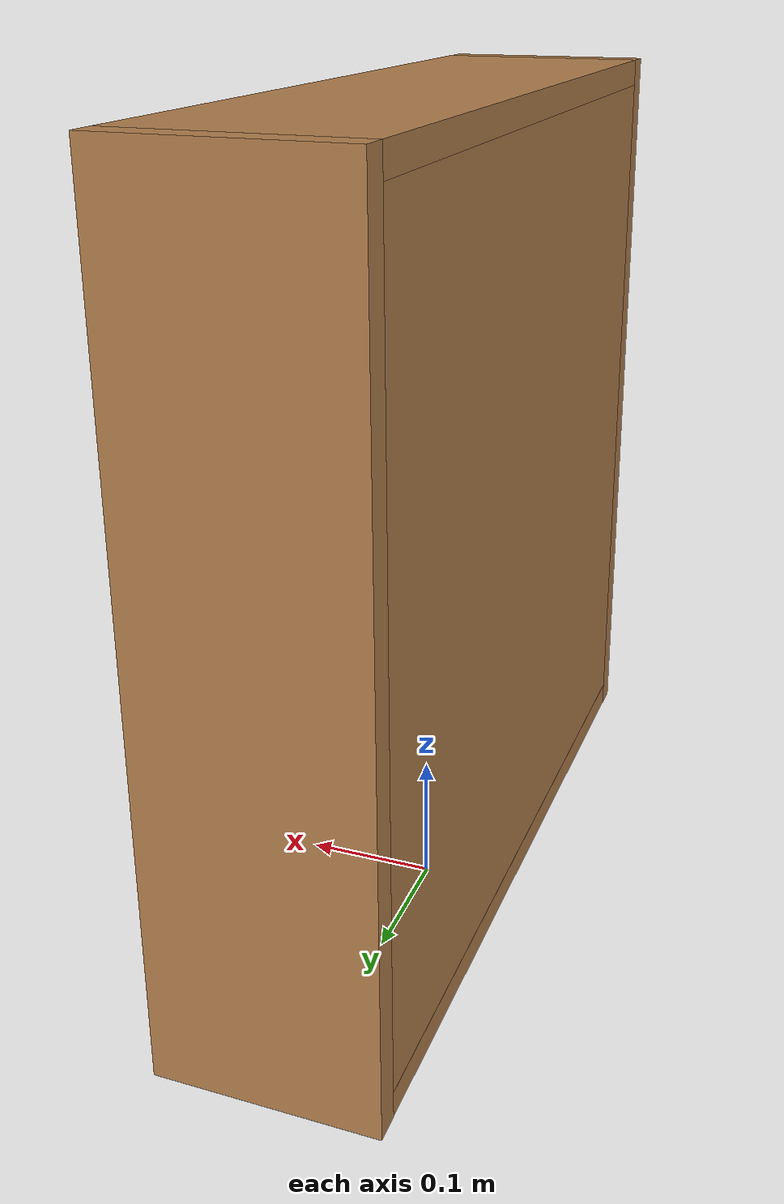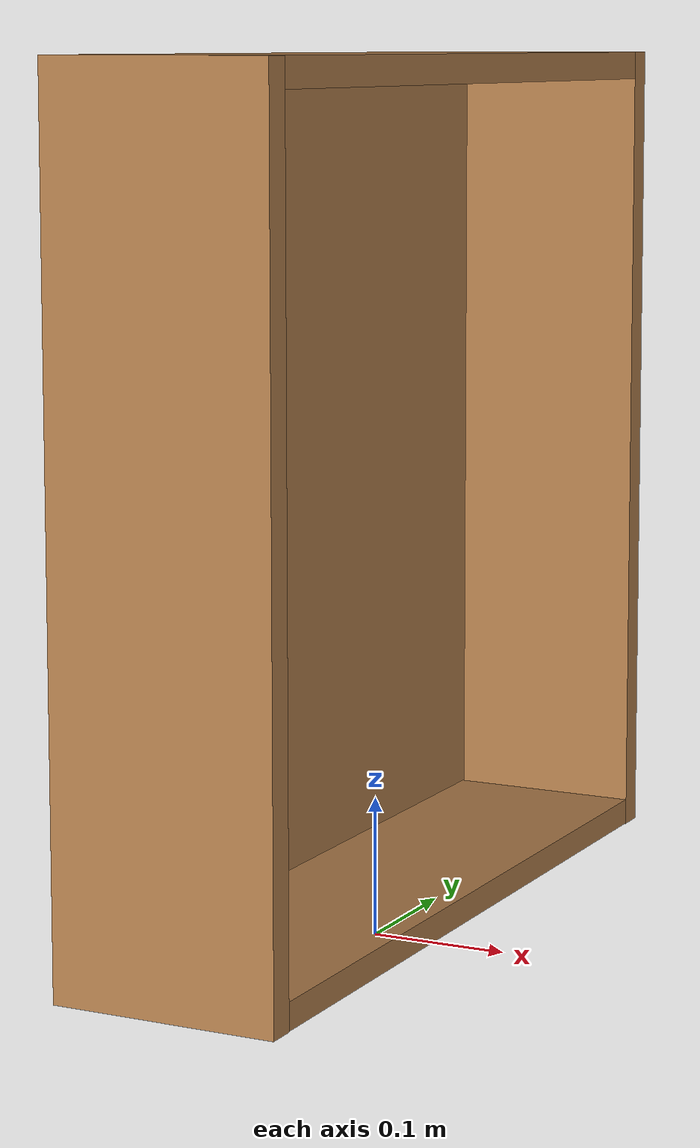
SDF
<?xml version='1.0'?>
<sdf version='1.6'>
  <model name='wooden_case_modi'>
    <link name='base'>
      <pose frame=''>-0 0 0.024 0 -0 0</pose>
      <inertial>
        <pose frame=''>-0.022184 0 0.171592 0 -0 0</pose>
        <mass>3.96264</mass>
        <inertia>
          <ixx>0.213536</ixx>
          <ixy>0</ixy>
          <ixz>0.00077938</ixz>
          <iyy>0.0708943</iyy>
          <iyz>0</iyz>
          <izz>0.154604</izz>
        </inertia>
      </inertial>
      <self_collide>0</self_collide>
      <kinematic>0</kinematic>
      <gravity>1</gravity>
      <visual name='visual_back'>
        <pose frame=''>-0.07 0 0.3 0 -0 0</pose>
        <geometry>
          <box>
            <size>0.02 0.56 0.56</size>
          </box>
        </geometry>
        <material>
          <script>
            <uri>file://media/materials/scripts/gazebo.material</uri>
            <name>Gazebo/Wood</name>
          </script>
          <shader type='pixel'>
            <normal_map>__default__</normal_map>
          </shader>
          <ambient>1 1 1 1</ambient>
          <diffuse>1 1 1 1</diffuse>
          <specular>0.2 0.2 0.2 1</specular>
          <emissive>0 0 0 1</emissive>
        </material>
        <transparency>0</transparency>
        <cast_shadows>1</cast_shadows>
      </visual>
      <visual name='visual_bottom'>
        <pose frame=''>0 0 0.01 0 -0 0</pose>
        <geometry>
          <box>
            <size>0.16 0.56 0.01905</size>
          </box>
        </geometry>
        <material>
          <script>
            <uri>file://media/materials/scripts/gazebo.material</uri>
            <name>Gazebo/Wood</name>
          </script>
          <shader type='pixel'>
            <normal_map>__default__</normal_map>
          </shader>
          <ambient>1 1 1 1</ambient>
          <diffuse>1 1 1 1</diffuse>
          <specular>0.2 0.2 0.2 1</specular>
          <emissive>0 0 0 1</emissive>
        </material>
        <transparency>0</transparency>
        <cast_shadows>1</cast_shadows>
      </visual>
      <visual name='visual_top'>
        <pose frame=''>0 0 0.59 0 -0 0</pose>
        <geometry>
          <box>
            <size>0.16 0.56 0.02</size>
          </box>
        </geometry>
        <material>
          <script>
            <uri>file://media/materials/scripts/gazebo.material</uri>
            <name>Gazebo/Wood</name>
          </script>
          <shader type='pixel'>
            <normal_map>__default__</normal_map>
          </shader>
          <ambient>1 1 1 1</ambient>
          <diffuse>1 1 1 1</diffuse>
          <specular>0.2 0.2 0.2 1</specular>
          <emissive>0 0 0 1</emissive>
        </material>
        <transparency>0</transparency>
        <cast_shadows>1</cast_shadows>
      </visual>
      <visual name='visual_left'>
        <pose frame=''>0 -0.29 0.3 0 -0 0</pose>
        <geometry>
          <box>
            <size>0.16 0.02 0.6</size>
          </box>
        </geometry>
        <material>
          <script>
            <uri>file://media/materials/scripts/gazebo.material</uri>
            <name>Gazebo/Wood</name>
          </script>
          <shader type='pixel'>
            <normal_map>__default__</normal_map>
          </shader>
          <ambient>1 1 1 1</ambient>
          <diffuse>1 1 1 1</diffuse>
          <specular>0.2 0.2 0.2 1</specular>
          <emissive>0 0 0 1</emissive>
        </material>
        <transparency>0</transparency>
        <cast_shadows>1</cast_shadows>
      </visual>
      <visual name='visual_right'>
        <pose frame=''>0 0.29 0.3 0 -0 0</pose>
        <geometry>
          <box>
            <size>0.16 0.02 0.6</size>
          </box>
        </geometry>
        <material>
          <script>
            <uri>file://media/materials/scripts/gazebo.material</uri>
            <name>Gazebo/Wood</name>
          </script>
          <shader type='pixel'>
            <normal_map>__default__</normal_map>
          </shader>
          <ambient>1 1 1 1</ambient>
          <diffuse>1 1 1 1</diffuse>
          <specular>0.2 0.2 0.2 1</specular>
          <emissive>0 0 0 1</emissive>
        </material>
        <transparency>0</transparency>
        <cast_shadows>1</cast_shadows>
      </visual>
      <collision name='collision_back'>
        <laser_retro>0</laser_retro>
        <max_contacts>10</max_contacts>
        <pose frame=''>-0.07 0 0.3 0 -0 0</pose>
        <geometry>
          <box>
            <size>0.02 0.56 0.56</size>
          </box>
        </geometry>
        <surface>
          <friction>
            <ode>
              <mu>1</mu>
              <mu2>1</mu2>
              <fdir1>0 0 0</fdir1>
              <slip1>0</slip1>
              <slip2>0</slip2>
            </ode>
            <torsional>
              <coefficient>1</coefficient>
              <patch_radius>0</patch_radius>
              <surface_radius>0.01</surface_radius>
              <use_patch_radius>0</use_patch_radius>
              <ode>
                <slip>0</slip>
              </ode>
            </torsional>
          </friction>
          <bounce>
            <restitution_coefficient>0</restitution_coefficient>
            <threshold>1e+06</threshold>
          </bounce>
          <contact>
            <collide_without_contact>0</collide_without_contact>
            <collide_without_contact_bitmask>1</collide_without_contact_bitmask>
            <collide_bitmask>1</collide_bitmask>
            <ode>
              <soft_cfm>0</soft_cfm>
              <soft_erp>0.2</soft_erp>
              <kp>100000</kp>
              <kd>100</kd>
              <max_vel>100</max_vel>
              <min_depth>0.001</min_depth>
            </ode>
            <bullet>
              <split_impulse>1</split_impulse>
              <split_impulse_penetration_threshold>-0.01</split_impulse_penetration_threshold>
              <soft_cfm>0</soft_cfm>
              <soft_erp>0.2</soft_erp>
              <kp>100000</kp>
              <kd>100</kd>
            </bullet>
          </contact>
        </surface>
      </collision>
      <collision name='collision_bottom'>
        <laser_retro>0</laser_retro>
        <max_contacts>10</max_contacts>
        <pose frame=''>0 0 0.01 0 -0 0</pose>
        <geometry>
          <box>
            <size>0.16 0.56 0.01905</size>
          </box>
        </geometry>
        <surface>
          <friction>
            <ode>
              <mu>1</mu>
              <mu2>1</mu2>
              <fdir1>0 0 0</fdir1>
              <slip1>0</slip1>
              <slip2>0</slip2>
            </ode>
            <torsional>
              <coefficient>1</coefficient>
              <patch_radius>0</patch_radius>
              <surface_radius>0.01</surface_radius>
              <use_patch_radius>0</use_patch_radius>
              <ode>
                <slip>0</slip>
              </ode>
            </torsional>
          </friction>
          <bounce>
            <restitution_coefficient>0</restitution_coefficient>
            <threshold>1e+06</threshold>
          </bounce>
          <contact>
            <collide_without_contact>0</collide_without_contact>
            <collide_without_contact_bitmask>1</collide_without_contact_bitmask>
            <collide_bitmask>1</collide_bitmask>
            <ode>
              <soft_cfm>0</soft_cfm>
              <soft_erp>0.2</soft_erp>
              <kp>100000</kp>
              <kd>100</kd>
              <max_vel>100</max_vel>
              <min_depth>0.001</min_depth>
            </ode>
            <bullet>
              <split_impulse>1</split_impulse>
              <split_impulse_penetration_threshold>-0.01</split_impulse_penetration_threshold>
              <soft_cfm>0</soft_cfm>
              <soft_erp>0.2</soft_erp>
              <kp>100000</kp>
              <kd>100</kd>
            </bullet>
          </contact>
        </surface>
      </collision>
      <collision name='collision_top'>
        <laser_retro>0</laser_retro>
        <max_contacts>10</max_contacts>
        <pose frame=''>0 0 0.59 0 -0 0</pose>
        <geometry>
          <box>
            <size>0.16 0.56 0.01905</size>
          </box>
        </geometry>
        <surface>
          <friction>
            <ode>
              <mu>1</mu>
              <mu2>1</mu2>
              <fdir1>0 0 0</fdir1>
              <slip1>0</slip1>
              <slip2>0</slip2>
            </ode>
            <torsional>
              <coefficient>1</coefficient>
              <patch_radius>0</patch_radius>
              <surface_radius>0.01</surface_radius>
              <use_patch_radius>0</use_patch_radius>
              <ode>
                <slip>0</slip>
              </ode>
            </torsional>
          </friction>
          <bounce>
            <restitution_coefficient>0</restitution_coefficient>
            <threshold>1e+06</threshold>
          </bounce>
          <contact>
            <collide_without_contact>0</collide_without_contact>
            <collide_without_contact_bitmask>1</collide_without_contact_bitmask>
            <collide_bitmask>1</collide_bitmask>
            <ode>
              <soft_cfm>0</soft_cfm>
              <soft_erp>0.2</soft_erp>
              <kp>100000</kp>
              <kd>100</kd>
              <max_vel>100</max_vel>
              <min_depth>0.001</min_depth>
            </ode>
            <bullet>
              <split_impulse>1</split_impulse>
              <split_impulse_penetration_threshold>-0.01</split_impulse_penetration_threshold>
              <soft_cfm>0</soft_cfm>
              <soft_erp>0.2</soft_erp>
              <kp>100000</kp>
              <kd>100</kd>
            </bullet>
          </contact>
        </surface>
      </collision>
      <collision name='collision_right'>
        <laser_retro>0</laser_retro>
        <max_contacts>10</max_contacts>
        <pose frame=''>0 0.29 0.3 0 -0 0</pose>
        <geometry>
          <box>
            <size>0.16 0.02 0.6</size>
          </box>
        </geometry>
        <surface>
          <friction>
            <ode>
              <mu>1</mu>
              <mu2>1</mu2>
              <fdir1>0 0 0</fdir1>
              <slip1>0</slip1>
              <slip2>0</slip2>
            </ode>
            <torsional>
              <coefficient>1</coefficient>
              <patch_radius>0</patch_radius>
              <surface_radius>0.01</surface_radius>
              <use_patch_radius>0</use_patch_radius>
              <ode>
                <slip>0</slip>
              </ode>
            </torsional>
          </friction>
          <bounce>
            <restitution_coefficient>0</restitution_coefficient>
            <threshold>1e+06</threshold>
          </bounce>
          <contact>
            <collide_without_contact>0</collide_without_contact>
            <collide_without_contact_bitmask>1</collide_without_contact_bitmask>
            <collide_bitmask>1</collide_bitmask>
            <ode>
              <soft_cfm>0</soft_cfm>
              <soft_erp>0.2</soft_erp>
              <kp>100000</kp>
              <kd>100</kd>
              <max_vel>100</max_vel>
              <min_depth>0.001</min_depth>
            </ode>
            <bullet>
              <split_impulse>1</split_impulse>
              <split_impulse_penetration_threshold>-0.01</split_impulse_penetration_threshold>
              <soft_cfm>0</soft_cfm>
              <soft_erp>0.2</soft_erp>
              <kp>100000</kp>
              <kd>100</kd>
            </bullet>
          </contact>
        </surface>
      </collision>
      <collision name='collision_left'>
        <laser_retro>0</laser_retro>
        <max_contacts>10</max_contacts>
        <pose frame=''>0 -0.29 0.3 0 -0 0</pose>
        <geometry>
          <box>
            <size>0.16 0.02 0.6</size>
          </box>
        </geometry>
        <surface>
          <friction>
            <ode>
              <mu>1</mu>
              <mu2>1</mu2>
              <fdir1>0 0 0</fdir1>
              <slip1>0</slip1>
              <slip2>0</slip2>
            </ode>
            <torsional>
              <coefficient>1</coefficient>
              <patch_radius>0</patch_radius>
              <surface_radius>0.01</surface_radius>
              <use_patch_radius>0</use_patch_radius>
              <ode>
                <slip>0</slip>
              </ode>
            </torsional>
          </friction>
          <bounce>
            <restitution_coefficient>0</restitution_coefficient>
            <threshold>1e+06</threshold>
          </bounce>
          <contact>
            <collide_without_contact>0</collide_without_contact>
            <collide_without_contact_bitmask>1</collide_without_contact_bitmask>
            <collide_bitmask>1</collide_bitmask>
            <ode>
              <soft_cfm>0</soft_cfm>
              <soft_erp>0.2</soft_erp>
              <kp>100000</kp>
              <kd>100</kd>
              <max_vel>100</max_vel>
              <min_depth>0.001</min_depth>
            </ode>
            <bullet>
              <split_impulse>1</split_impulse>
              <split_impulse_penetration_threshold>-0.01</split_impulse_penetration_threshold>
              <soft_cfm>0</soft_cfm>
              <soft_erp>0.2</soft_erp>
              <kp>100000</kp>
              <kd>100</kd>
            </bullet>
          </contact>
        </surface>
      </collision>
    </link>
    <static>0</static>
    <allow_auto_disable>1</allow_auto_disable>
  </model>
</sdf>
